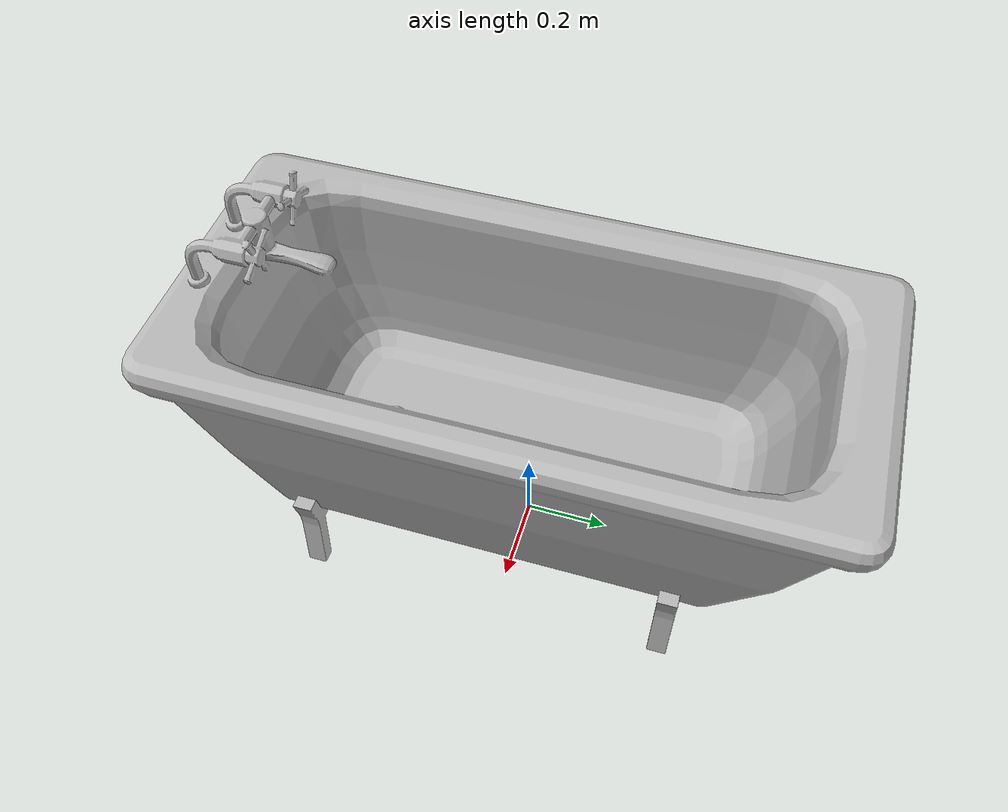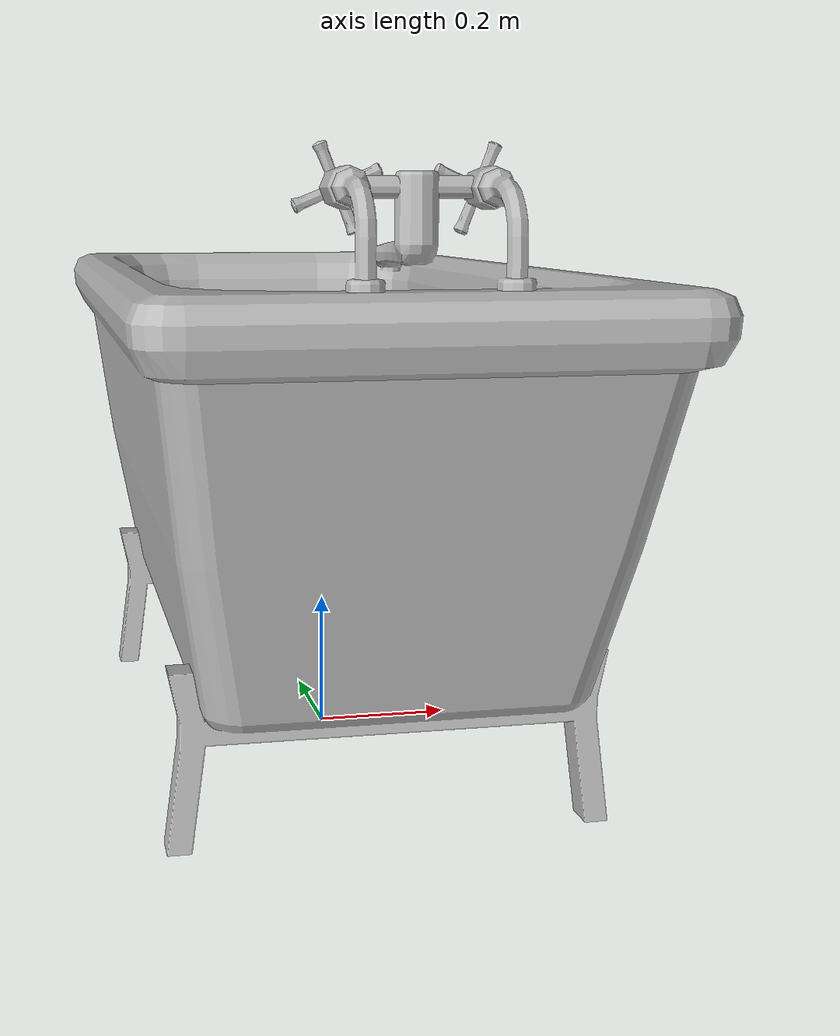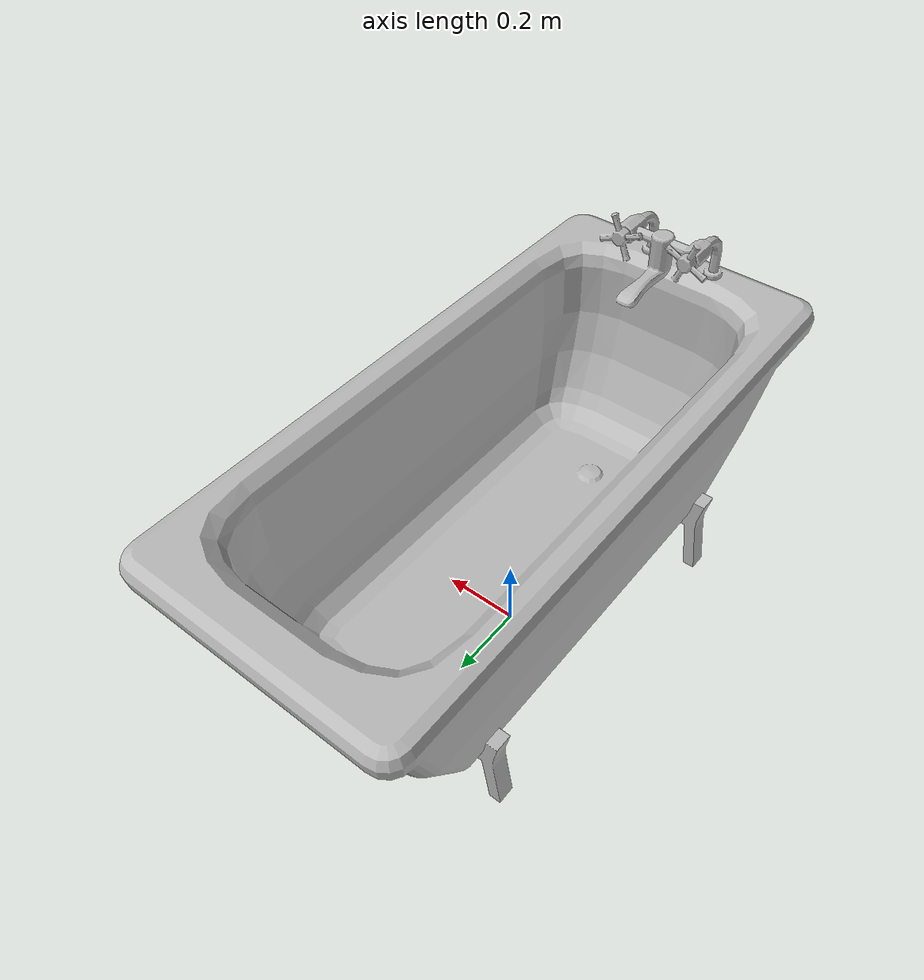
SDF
<?xml version='1.0'?>
<sdf version='1.4'>
  <model name='81'>
    <pose>0 0 0 0 0 0</pose>
    <static>true</static>
    <link name='link'>
      <collision name='collision'>
        <pose>0 0 0 0 0 0</pose>
        <geometry>
          <box>
            <size>0.7 1.5 2</size>
          </box>
        </geometry>
      </collision>
      <visual name='visual'>
        <pose>0 0 0 0 0 0</pose>
        <geometry>
          <mesh><uri>model://81/81.dae</uri></mesh>
        </geometry>
      </visual>
    </link>
  </model>
</sdf>
